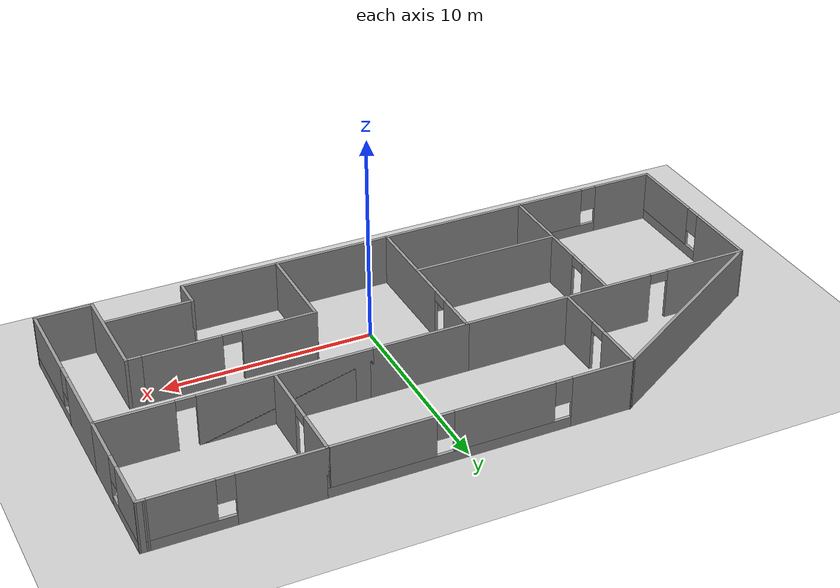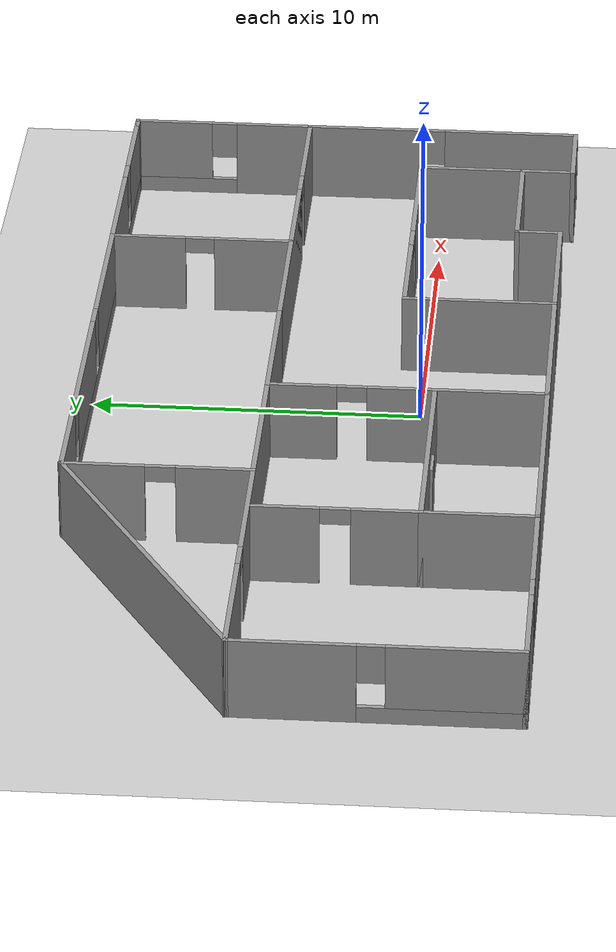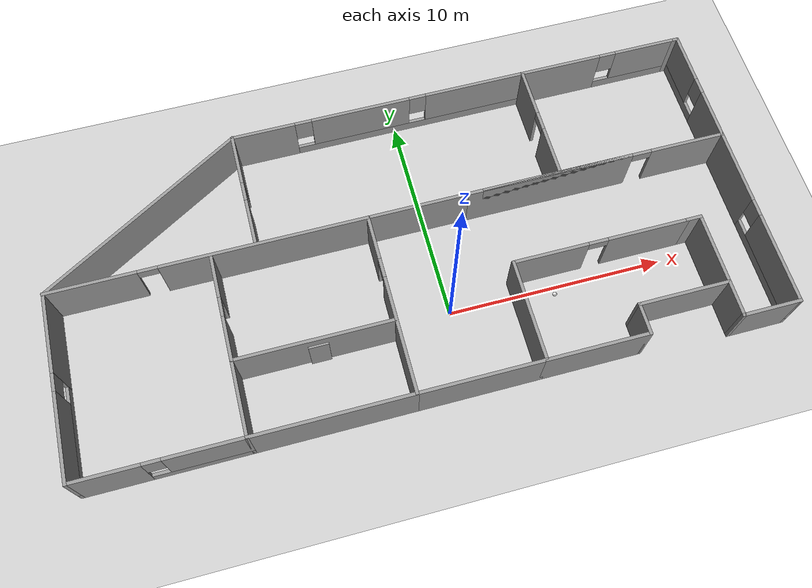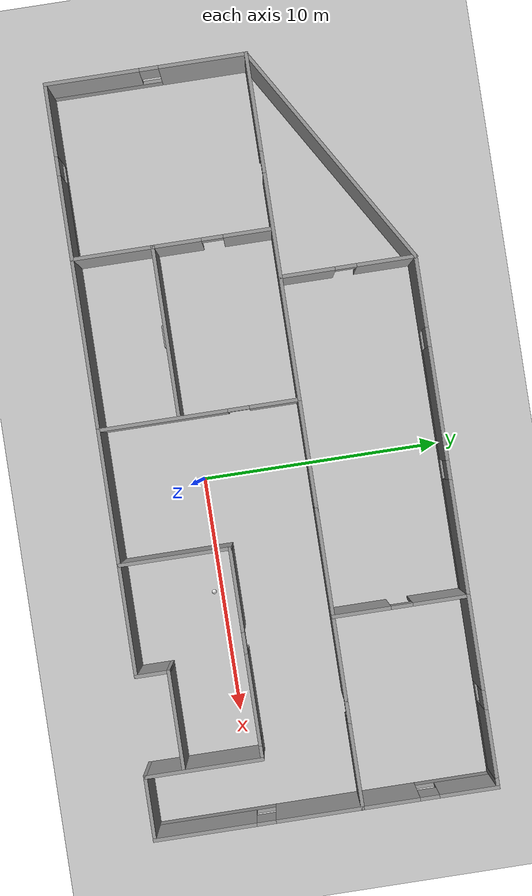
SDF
<sdf version="1.6">
 <world name="default">
  <model name="ground_plane">
   <static>1</static>
   <link name="link">
    <collision name="collision">
     <geometry><plane><normal>0 0 1</normal><size>100 100</size></plane></geometry>
     <surface>
      <contact><collide_bitmask>65535</collide_bitmask></contact>
      <friction><ode><mu>100</mu><mu2>50</mu2></ode></friction>
     </surface>
    </collision>
    <visual name="visual">
     <cast_shadows>0</cast_shadows>
     <geometry><plane><normal>0 0 1</normal><size>100 100</size></plane></geometry>
     <material>
      <script><uri>file://media/materials/scripts/gazebo.material</uri><name>Gazebo/Grey</name></script>
     </material>
    </visual>
   </link>
  </model>
  <light name="sun" type="directional">
   <pose>0 0 10 0 -0 0</pose>
   <diffuse>0.8 0.8 0.8 1</diffuse>
   <specular>0.2 0.2 0.2 1</specular>
   <attenuation>
    <range>1000</range>
    <constant>0.9</constant>
    <linear>0.01</linear>
    <quadratic>0.001</quadratic>
   </attenuation>
   <direction>-0.5 0.1 -0.9</direction>
  </light>
  <gravity>0 0 -9.8</gravity>
  <magnetic_field>6e-06 2.3e-05 -4.2e-05</magnetic_field>
  <atmosphere type="adiabatic"/>
  <physics name="default_physics" default="0" type="ode">
   <max_step_size>0.001</max_step_size>
   <real_time_factor>1</real_time_factor>
   <real_time_update_rate>1000</real_time_update_rate>
  </physics>
  <scene><ambient>0.4 0.4 0.4 1</ambient><background>0.7 0.7 0.7 1</background><shadows>1</shadows></scene>
  <spherical_coordinates>
   <surface_model>EARTH_WGS84</surface_model>
   <latitude_deg>0</latitude_deg>
   <longitude_deg>0</longitude_deg>
   <elevation>0</elevation>
   <heading_deg>0</heading_deg>
  </spherical_coordinates>
  <model name="my_building">
   <pose>-1.38923 2.96332 0 0 -0 0</pose>
   <link name="Door_2">
    <collision name="Door_2_Collision">
     <geometry><box><size>0.9 0.17 2</size></box></geometry>
     <pose>0 0 1 0 -0 0</pose>
    </collision>
    <visual name="Door_2_Visual">
     <pose>0 0 1 0 -0 0</pose>
     <geometry><box><size>0.9 0.17 2</size></box></geometry>
     <material>
      <script><uri>file://media/materials/scripts/gazebo.material</uri><name>Gazebo/Grey</name></script>
     </material>
    </visual>
    <pose>-4.71272 -3.5987 0 0 -0 0</pose>
   </link>
   <link name="Wall_10">
    <collision name="Wall_10_Collision">
     <geometry><box><size>7.25 0.15 2.5</size></box></geometry>
     <pose>0 0 1.25 0 -0 0</pose>
    </collision>
    <visual name="Wall_10_Visual">
     <pose>0 0 1.25 0 -0 0</pose>
     <geometry><box><size>7.25 0.15 2.5</size></box></geometry>
     <material>
      <script><uri>file://media/materials/scripts/gazebo.material</uri><name>Gazebo/Grey</name></script>
      <ambient>1 1 1 1</ambient>
     </material>
     <meta><layer>0</layer></meta>
    </visual>
    <pose>-4.81027 -6.86697 0 0 -0 3.14159</pose>
   </link>
   <link name="Wall_11">
    <collision name="Wall_11_Collision">
     <geometry><box><size>3.5 0.15 2.5</size></box></geometry>
     <pose>0 0 1.25 0 -0 0</pose>
    </collision>
    <visual name="Wall_11_Visual">
     <pose>0 0 1.25 0 -0 0</pose>
     <geometry><box><size>3.5 0.15 2.5</size></box></geometry>
     <material>
      <script><uri>file://media/materials/scripts/gazebo.material</uri><name>Gazebo/Grey</name></script>
      <ambient>1 1 1 1</ambient>
     </material>
     <meta><layer>0</layer></meta>
    </visual>
    <pose>-8.36027 -5.19197 0 0 -0 1.5708</pose>
   </link>
   <link name="Wall_12">
    <collision name="Wall_12_Collision">
     <geometry><box><size>7.25 0.15 2.5</size></box></geometry>
     <pose>0 0 1.25 0 -0 0</pose>
    </collision>
    <visual name="Wall_12_Visual">
     <pose>0 0 1.25 0 -0 0</pose>
     <geometry><box><size>7.25 0.15 2.5</size></box></geometry>
     <material>
      <script><uri>file://media/materials/scripts/gazebo.material</uri><name>Gazebo/Grey</name></script>
      <ambient>1 1 1 1</ambient>
     </material>
     <meta><layer>0</layer></meta>
    </visual>
    <pose>-4.81027 -3.51697 0 0 -0 0</pose>
   </link>
   <link name="Wall_14">
    <pose>-8.46172 1.48303 0 0 -0 3.14159</pose>
    <visual name="Wall_14_Visual_0">
     <pose>-2.516 0 1.25 0 -0 0</pose>
     <geometry><box><size>9.468 0.15 2.5</size></box></geometry>
     <material>
      <script><uri>file://media/materials/scripts/gazebo.material</uri><name>Gazebo/Grey</name></script>
      <ambient>1 1 1 1</ambient>
     </material>
     <meta><layer>0</layer></meta>
    </visual>
    <collision name="Wall_14_Collision_0">
     <geometry><box><size>9.468 0.15 2.5</size></box></geometry>
     <pose>-2.516 0 1.25 0 -0 0</pose>
    </collision>
    <visual name="Wall_14_Visual_1">
     <pose>5.184 0 1.25 0 -0 0</pose>
     <geometry><box><size>4.132 0.15 2.5</size></box></geometry>
     <material>
      <script><uri>file://media/materials/scripts/gazebo.material</uri><name>Gazebo/Grey</name></script>
      <ambient>1 1 1 1</ambient>
     </material>
     <meta><layer>0</layer></meta>
    </visual>
    <collision name="Wall_14_Collision_1">
     <geometry><box><size>4.132 0.15 2.5</size></box></geometry>
     <pose>5.184 0 1.25 0 -0 0</pose>
    </collision>
    <visual name="Wall_14_Visual_2">
     <pose>2.668 0 2.25 0 -0 0</pose>
     <geometry><box><size>0.9 0.15 0.5</size></box></geometry>
     <material>
      <script><uri>file://media/materials/scripts/gazebo.material</uri><name>Gazebo/Grey</name></script>
      <ambient>1 1 1 1</ambient>
     </material>
     <meta><layer>0</layer></meta>
    </visual>
    <collision name="Wall_14_Collision_2">
     <geometry><box><size>0.9 0.15 0.5</size></box></geometry>
     <pose>2.668 0 2.25 0 -0 0</pose>
    </collision>
   </link>
   <link name="Wall_15">
    <pose>-15.6367 -2.69197 0 0 0 -1.5708</pose>
    <visual name="Wall_15_Visual_0">
     <pose>-2.38913 0 1.25 0 -0 0</pose>
     <geometry><box><size>3.72173 0.15 2.5</size></box></geometry>
     <material>
      <script><uri>file://media/materials/scripts/gazebo.material</uri><name>Gazebo/Grey</name></script>
      <ambient>1 1 1 1</ambient>
     </material>
     <meta><layer>0</layer></meta>
    </visual>
    <collision name="Wall_15_Collision_0">
     <geometry><box><size>3.72173 0.15 2.5</size></box></geometry>
     <pose>-2.38913 0 1.25 0 -0 0</pose>
    </collision>
    <visual name="Wall_15_Visual_1">
     <pose>1.86087 0 0.25 0 -0 0</pose>
     <geometry><box><size>4.77827 0.15 0.5</size></box></geometry>
     <material>
      <script><uri>file://media/materials/scripts/gazebo.material</uri><name>Gazebo/Grey</name></script>
      <ambient>1 1 1 1</ambient>
     </material>
     <meta><layer>0</layer></meta>
    </visual>
    <collision name="Wall_15_Collision_1">
     <geometry><box><size>4.77827 0.15 0.5</size></box></geometry>
     <pose>1.86087 0 0.25 0 -0 0</pose>
    </collision>
    <visual name="Wall_15_Visual_2">
     <pose>2.26087 0 1.5 0 -0 0</pose>
     <geometry><box><size>3.97827 0.15 2</size></box></geometry>
     <material>
      <script><uri>file://media/materials/scripts/gazebo.material</uri><name>Gazebo/Grey</name></script>
      <ambient>1 1 1 1</ambient>
     </material>
     <meta><layer>0</layer></meta>
    </visual>
    <collision name="Wall_15_Collision_2">
     <geometry><box><size>3.97827 0.15 2</size></box></geometry>
     <pose>2.26087 0 1.5 0 -0 0</pose>
    </collision>
    <visual name="Wall_15_Visual_3">
     <pose>-0.128267 0 1.9 0 -0 0</pose>
     <geometry><box><size>0.8 0.15 1.2</size></box></geometry>
     <material>
      <script><uri>file://media/materials/scripts/gazebo.material</uri><name>Gazebo/Grey</name></script>
      <ambient>1 1 1 1</ambient>
     </material>
     <meta><layer>0</layer></meta>
    </visual>
    <collision name="Wall_15_Collision_3">
     <geometry><box><size>0.8 0.15 1.2</size></box></geometry>
     <pose>-0.128267 0 1.9 0 -0 0</pose>
    </collision>
   </link>
   <link name="Wall_16">
    <pose>-11.9985 -6.86697 0 0 -0 0</pose>
    <visual name="Wall_16_Visual_0">
     <pose>-2.17422 0 1.25 0 -0 0</pose>
     <geometry><box><size>3.078 0.15 2.5</size></box></geometry>
     <material>
      <script><uri>file://media/materials/scripts/gazebo.material</uri><name>Gazebo/Grey</name></script>
      <ambient>1 1 1 1</ambient>
     </material>
     <meta><layer>0</layer></meta>
    </visual>
    <collision name="Wall_16_Collision_0">
     <geometry><box><size>3.078 0.15 2.5</size></box></geometry>
     <pose>-2.17422 0 1.25 0 -0 0</pose>
    </collision>
    <visual name="Wall_16_Visual_1">
     <pose>1.539 0 0.25 0 -0 0</pose>
     <geometry><box><size>4.34845 0.15 0.5</size></box></geometry>
     <material>
      <script><uri>file://media/materials/scripts/gazebo.material</uri><name>Gazebo/Grey</name></script>
      <ambient>1 1 1 1</ambient>
     </material>
     <meta><layer>0</layer></meta>
    </visual>
    <collision name="Wall_16_Collision_1">
     <geometry><box><size>4.34845 0.15 0.5</size></box></geometry>
     <pose>1.539 0 0.25 0 -0 0</pose>
    </collision>
    <visual name="Wall_16_Visual_2">
     <pose>1.939 0 1.5 0 -0 0</pose>
     <geometry><box><size>3.54845 0.15 2</size></box></geometry>
     <material>
      <script><uri>file://media/materials/scripts/gazebo.material</uri><name>Gazebo/Grey</name></script>
      <ambient>1 1 1 1</ambient>
     </material>
     <meta><layer>0</layer></meta>
    </visual>
    <collision name="Wall_16_Collision_2">
     <geometry><box><size>3.54845 0.15 2</size></box></geometry>
     <pose>1.939 0 1.5 0 -0 0</pose>
    </collision>
    <visual name="Wall_16_Visual_3">
     <pose>-0.235223 0 1.9 0 -0 0</pose>
     <geometry><box><size>0.8 0.15 1.2</size></box></geometry>
     <material>
      <script><uri>file://media/materials/scripts/gazebo.material</uri><name>Gazebo/Grey</name></script>
      <ambient>1 1 1 1</ambient>
     </material>
     <meta><layer>0</layer></meta>
    </visual>
    <collision name="Wall_16_Collision_3">
     <geometry><box><size>0.8 0.15 1.2</size></box></geometry>
     <pose>-0.235223 0 1.9 0 -0 0</pose>
    </collision>
   </link>
   <link name="Wall_18">
    <collision name="Wall_18_Collision">
     <geometry><box><size>5.75 0.15 2.5</size></box></geometry>
     <pose>0 0 1.25 0 -0 0</pose>
    </collision>
    <visual name="Wall_18_Visual">
     <pose>0 0 1.25 0 -0 0</pose>
     <geometry><box><size>5.75 0.15 2.5</size></box></geometry>
     <material>
      <script><uri>file://media/materials/scripts/gazebo.material</uri><name>Gazebo/Grey</name></script>
      <ambient>1 1 1 1</ambient>
     </material>
     <meta><layer>0</layer></meta>
    </visual>
    <pose>1.53973 -6.86697 0 0 -0 0</pose>
   </link>
   <link name="Wall_19">
    <collision name="Wall_19_Collision">
     <geometry><box><size>4.75 0.15 2.5</size></box></geometry>
     <pose>0 0 1.25 0 -0 0</pose>
    </collision>
    <visual name="Wall_19_Visual">
     <pose>0 0 1.25 0 -0 0</pose>
     <geometry><box><size>4.75 0.15 2.5</size></box></geometry>
     <material>
      <script><uri>file://media/materials/scripts/gazebo.material</uri><name>Gazebo/Grey</name></script>
      <ambient>1 1 1 1</ambient>
     </material>
     <meta><layer>0</layer></meta>
    </visual>
    <pose>4.33973 -4.56697 0 0 -0 1.5708</pose>
   </link>
   <link name="Wall_20">
    <pose>8.38973 -2.26697 0 0 -0 0</pose>
    <visual name="Wall_20_Visual_0">
     <pose>-2.35272 0 1.25 0 -0 0</pose>
     <geometry><box><size>3.54455 0.15 2.5</size></box></geometry>
     <material>
      <script><uri>file://media/materials/scripts/gazebo.material</uri><name>Gazebo/Grey</name></script>
      <ambient>1 1 1 1</ambient>
     </material>
     <meta><layer>0</layer></meta>
    </visual>
    <collision name="Wall_20_Collision_0">
     <geometry><box><size>3.54455 0.15 2.5</size></box></geometry>
     <pose>-2.35272 0 1.25 0 -0 0</pose>
    </collision>
    <visual name="Wall_20_Visual_1">
     <pose>2.22228 0 1.25 0 -0 0</pose>
     <geometry><box><size>3.80545 0.15 2.5</size></box></geometry>
     <material>
      <script><uri>file://media/materials/scripts/gazebo.material</uri><name>Gazebo/Grey</name></script>
      <ambient>1 1 1 1</ambient>
     </material>
     <meta><layer>0</layer></meta>
    </visual>
    <collision name="Wall_20_Collision_1">
     <geometry><box><size>3.80545 0.15 2.5</size></box></geometry>
     <pose>2.22228 0 1.25 0 -0 0</pose>
    </collision>
    <visual name="Wall_20_Visual_2">
     <pose>-0.130447 0 2.25 0 -0 0</pose>
     <geometry><box><size>0.9 0.15 0.5</size></box></geometry>
     <material>
      <script><uri>file://media/materials/scripts/gazebo.material</uri><name>Gazebo/Grey</name></script>
      <ambient>1 1 1 1</ambient>
     </material>
     <meta><layer>0</layer></meta>
    </visual>
    <collision name="Wall_20_Collision_2">
     <geometry><box><size>0.9 0.15 0.5</size></box></geometry>
     <pose>-0.130447 0 2.25 0 -0 0</pose>
    </collision>
   </link>
   <link name="Wall_24">
    <pose>9.48828 1.48303 0 0 -0 0</pose>
    <visual name="Wall_24_Visual_0">
     <pose>-2.2395 0 1.25 0 -0 0</pose>
     <geometry><box><size>8.021 0.15 2.5</size></box></geometry>
     <material>
      <script><uri>file://media/materials/scripts/gazebo.material</uri><name>Gazebo/Grey</name></script>
      <ambient>1 1 1 1</ambient>
     </material>
     <meta><layer>0</layer></meta>
    </visual>
    <collision name="Wall_24_Collision_0">
     <geometry><box><size>8.021 0.15 2.5</size></box></geometry>
     <pose>-2.2395 0 1.25 0 -0 0</pose>
    </collision>
    <visual name="Wall_24_Visual_1">
     <pose>-1.8155 0 1.25 0 -0 0</pose>
     <geometry><box><size>7.173 0.15 2.5</size></box></geometry>
     <material>
      <script><uri>file://media/materials/scripts/gazebo.material</uri><name>Gazebo/Grey</name></script>
      <ambient>1 1 1 1</ambient>
     </material>
     <meta><layer>0</layer></meta>
    </visual>
    <collision name="Wall_24_Collision_1">
     <geometry><box><size>7.173 0.15 2.5</size></box></geometry>
     <pose>-1.8155 0 1.25 0 -0 0</pose>
    </collision>
    <visual name="Wall_24_Visual_2">
     <pose>4.4605 0 1.25 0 -0 0</pose>
     <geometry><box><size>3.579 0.15 2.5</size></box></geometry>
     <material>
      <script><uri>file://media/materials/scripts/gazebo.material</uri><name>Gazebo/Grey</name></script>
      <ambient>1 1 1 1</ambient>
     </material>
     <meta><layer>0</layer></meta>
    </visual>
    <collision name="Wall_24_Collision_2">
     <geometry><box><size>3.579 0.15 2.5</size></box></geometry>
     <pose>4.4605 0 1.25 0 -0 0</pose>
    </collision>
    <visual name="Wall_24_Visual_3">
     <pose>2.221 0 2.25 0 -0 0</pose>
     <geometry><box><size>0.9 0.15 0.5</size></box></geometry>
     <material>
      <script><uri>file://media/materials/scripts/gazebo.material</uri><name>Gazebo/Grey</name></script>
      <ambient>1 1 1 1</ambient>
     </material>
     <meta><layer>0</layer></meta>
    </visual>
    <collision name="Wall_24_Collision_3">
     <geometry><box><size>0.9 0.15 0.5</size></box></geometry>
     <pose>2.221 0 2.25 0 -0 0</pose>
    </collision>
    <visual name="Wall_24_Visual_4">
     <pose>2.221 0 2.25 0 -0 0</pose>
     <geometry><box><size>0.9 0.15 0.5</size></box></geometry>
     <material>
      <script><uri>file://media/materials/scripts/gazebo.material</uri><name>Gazebo/Grey</name></script>
      <ambient>1 1 1 1</ambient>
     </material>
     <meta><layer>0</layer></meta>
    </visual>
    <collision name="Wall_24_Collision_4">
     <geometry><box><size>0.9 0.15 0.5</size></box></geometry>
     <pose>2.221 0 2.25 0 -0 0</pose>
    </collision>
   </link>
   <link name="Wall_25">
    <pose>15.6633 -2.81697 0 0 0 -1.5708</pose>
    <visual name="Wall_25_Visual_0">
     <pose>-2.54863 0 1.25 0 -0 0</pose>
     <geometry><box><size>3.65273 0.15 2.5</size></box></geometry>
     <material>
      <script><uri>file://media/materials/scripts/gazebo.material</uri><name>Gazebo/Grey</name></script>
      <ambient>1 1 1 1</ambient>
     </material>
     <meta><layer>0</layer></meta>
    </visual>
    <collision name="Wall_25_Collision_0">
     <geometry><box><size>3.65273 0.15 2.5</size></box></geometry>
     <pose>-2.54863 0 1.25 0 -0 0</pose>
    </collision>
    <visual name="Wall_25_Visual_1">
     <pose>1.82637 0 0.25 0 -0 0</pose>
     <geometry><box><size>5.09727 0.15 0.5</size></box></geometry>
     <material>
      <script><uri>file://media/materials/scripts/gazebo.material</uri><name>Gazebo/Grey</name></script>
      <ambient>1 1 1 1</ambient>
     </material>
     <meta><layer>0</layer></meta>
    </visual>
    <collision name="Wall_25_Collision_1">
     <geometry><box><size>5.09727 0.15 0.5</size></box></geometry>
     <pose>1.82637 0 0.25 0 -0 0</pose>
    </collision>
    <visual name="Wall_25_Visual_2">
     <pose>2.22637 0 1.5 0 -0 0</pose>
     <geometry><box><size>4.29727 0.15 2</size></box></geometry>
     <material>
      <script><uri>file://media/materials/scripts/gazebo.material</uri><name>Gazebo/Grey</name></script>
      <ambient>1 1 1 1</ambient>
     </material>
     <meta><layer>0</layer></meta>
    </visual>
    <collision name="Wall_25_Collision_2">
     <geometry><box><size>4.29727 0.15 2</size></box></geometry>
     <pose>2.22637 0 1.5 0 -0 0</pose>
    </collision>
    <visual name="Wall_25_Visual_3">
     <pose>-0.322267 0 1.9 0 -0 0</pose>
     <geometry><box><size>0.8 0.15 1.2</size></box></geometry>
     <material>
      <script><uri>file://media/materials/scripts/gazebo.material</uri><name>Gazebo/Grey</name></script>
      <ambient>1 1 1 1</ambient>
     </material>
     <meta><layer>0</layer></meta>
    </visual>
    <collision name="Wall_25_Collision_3">
     <geometry><box><size>0.8 0.15 1.2</size></box></geometry>
     <pose>-0.322267 0 1.9 0 -0 0</pose>
    </collision>
   </link>
   <link name="Wall_26">
    <collision name="Wall_26_Collision">
     <geometry><box><size>2.75 0.15 2.5</size></box></geometry>
     <pose>0 0 1.25 0 -0 0</pose>
    </collision>
    <visual name="Wall_26_Visual">
     <pose>0 0 1.25 0 -0 0</pose>
     <geometry><box><size>2.75 0.15 2.5</size></box></geometry>
     <material>
      <script><uri>file://media/materials/scripts/gazebo.material</uri><name>Gazebo/Grey</name></script>
      <ambient>1 1 1 1</ambient>
     </material>
     <meta><layer>0</layer></meta>
    </visual>
    <pose>14.3633 -7.11697 0 0 -0 3.14159</pose>
   </link>
   <link name="Wall_27">
    <collision name="Wall_27_Collision">
     <geometry><box><size>5 0.15 2.5</size></box></geometry>
     <pose>0 0 1.25 0 -0 0</pose>
    </collision>
    <visual name="Wall_27_Visual">
     <pose>0 0 1.25 0 -0 0</pose>
     <geometry><box><size>5 0.15 2.5</size></box></geometry>
     <material>
      <script><uri>file://media/materials/scripts/gazebo.material</uri><name>Gazebo/Grey</name></script>
      <ambient>1 1 1 1</ambient>
     </material>
     <meta><layer>0</layer></meta>
    </visual>
    <pose>13.0633 -4.69197 0 0 -0 1.5708</pose>
   </link>
   <link name="Wall_28">
    <collision name="Wall_28_Collision">
     <geometry><box><size>0.77355 0.15 2.5</size></box></geometry>
     <pose>0 0 1.25 0 -0 0</pose>
    </collision>
    <visual name="Wall_28_Visual">
     <pose>0 0 1.25 0 -0 0</pose>
     <geometry><box><size>0.77355 0.15 2.5</size></box></geometry>
     <material>
      <script><uri>file://media/materials/scripts/gazebo.material</uri><name>Gazebo/Grey</name></script>
      <ambient>1 1 1 1</ambient>
     </material>
     <meta><layer>0</layer></meta>
    </visual>
    <pose>12.7515 -2.26697 0 0 -0 3.14159</pose>
   </link>
   <link name="Wall_30">
    <pose>-6.35081 4.289 0 0 -0 1.5708</pose>
    <visual name="Wall_30_Visual_0">
     <pose>-1.70785 0 1.25 0 -0 0</pose>
     <geometry><box><size>2.3343 0.15 2.5</size></box></geometry>
     <material>
      <script><uri>file://media/materials/scripts/gazebo.material</uri><name>Gazebo/Grey</name></script>
      <ambient>1 1 1 1</ambient>
     </material>
     <meta><layer>0</layer></meta>
    </visual>
    <collision name="Wall_30_Collision_0">
     <geometry><box><size>2.3343 0.15 2.5</size></box></geometry>
     <pose>-1.70785 0 1.25 0 -0 0</pose>
    </collision>
    <visual name="Wall_30_Visual_1">
     <pose>1.61715 0 1.25 0 -0 0</pose>
     <geometry><box><size>2.5157 0.15 2.5</size></box></geometry>
     <material>
      <script><uri>file://media/materials/scripts/gazebo.material</uri><name>Gazebo/Grey</name></script>
      <ambient>1 1 1 1</ambient>
     </material>
     <meta><layer>0</layer></meta>
    </visual>
    <collision name="Wall_30_Collision_1">
     <geometry><box><size>2.5157 0.15 2.5</size></box></geometry>
     <pose>1.61715 0 1.25 0 -0 0</pose>
    </collision>
    <visual name="Wall_30_Visual_2">
     <pose>-0.090696 0 2.25 0 -0 0</pose>
     <geometry><box><size>0.9 0.15 0.5</size></box></geometry>
     <material>
      <script><uri>file://media/materials/scripts/gazebo.material</uri><name>Gazebo/Grey</name></script>
      <ambient>1 1 1 1</ambient>
     </material>
     <meta><layer>0</layer></meta>
    </visual>
    <collision name="Wall_30_Collision_2">
     <geometry><box><size>0.9 0.15 0.5</size></box></geometry>
     <pose>-0.090696 0 2.25 0 -0 0</pose>
    </collision>
   </link>
   <link name="Wall_31">
    <pose>0.699185 7.089 0 0 -0 0</pose>
    <visual name="Wall_31_Visual_0">
     <pose>-5.60595 0 1.25 0 -0 0</pose>
     <geometry><box><size>3.0381 0.15 2.5</size></box></geometry>
     <material>
      <script><uri>file://media/materials/scripts/gazebo.material</uri><name>Gazebo/Grey</name></script>
      <ambient>1 1 1 1</ambient>
     </material>
     <meta><layer>0</layer></meta>
    </visual>
    <collision name="Wall_31_Collision_0">
     <geometry><box><size>3.0381 0.15 2.5</size></box></geometry>
     <pose>-5.60595 0 1.25 0 -0 0</pose>
    </collision>
    <visual name="Wall_31_Visual_1">
     <pose>1.51905 0 0.25 0 -0 0</pose>
     <geometry><box><size>11.2119 0.15 0.5</size></box></geometry>
     <material>
      <script><uri>file://media/materials/scripts/gazebo.material</uri><name>Gazebo/Grey</name></script>
      <ambient>1 1 1 1</ambient>
     </material>
     <meta><layer>0</layer></meta>
    </visual>
    <collision name="Wall_31_Collision_1">
     <geometry><box><size>11.2119 0.15 0.5</size></box></geometry>
     <pose>1.51905 0 0.25 0 -0 0</pose>
    </collision>
    <visual name="Wall_31_Visual_2">
     <pose>-0.926904 0 1.5 0 -0 0</pose>
     <geometry><box><size>4.72 0.15 2</size></box></geometry>
     <material>
      <script><uri>file://media/materials/scripts/gazebo.material</uri><name>Gazebo/Grey</name></script>
      <ambient>1 1 1 1</ambient>
     </material>
     <meta><layer>0</layer></meta>
    </visual>
    <collision name="Wall_31_Collision_2">
     <geometry><box><size>4.72 0.15 2</size></box></geometry>
     <pose>-0.926904 0 1.5 0 -0 0</pose>
    </collision>
    <visual name="Wall_31_Visual_3">
     <pose>4.67905 0 1.5 0 -0 0</pose>
     <geometry><box><size>4.8919 0.15 2</size></box></geometry>
     <material>
      <script><uri>file://media/materials/scripts/gazebo.material</uri><name>Gazebo/Grey</name></script>
      <ambient>1 1 1 1</ambient>
     </material>
     <meta><layer>0</layer></meta>
    </visual>
    <collision name="Wall_31_Collision_3">
     <geometry><box><size>4.8919 0.15 2</size></box></geometry>
     <pose>4.67905 0 1.5 0 -0 0</pose>
    </collision>
    <visual name="Wall_31_Visual_4">
     <pose>-3.6869 0 1.9 0 -0 0</pose>
     <geometry><box><size>0.8 0.15 1.2</size></box></geometry>
     <material>
      <script><uri>file://media/materials/scripts/gazebo.material</uri><name>Gazebo/Grey</name></script>
      <ambient>1 1 1 1</ambient>
     </material>
     <meta><layer>0</layer></meta>
    </visual>
    <collision name="Wall_31_Collision_4">
     <geometry><box><size>0.8 0.15 1.2</size></box></geometry>
     <pose>-3.6869 0 1.9 0 -0 0</pose>
    </collision>
    <visual name="Wall_31_Visual_5">
     <pose>1.8331 0 1.9 0 -0 0</pose>
     <geometry><box><size>0.8 0.15 1.2</size></box></geometry>
     <material>
      <script><uri>file://media/materials/scripts/gazebo.material</uri><name>Gazebo/Grey</name></script>
      <ambient>1 1 1 1</ambient>
     </material>
     <meta><layer>0</layer></meta>
    </visual>
    <collision name="Wall_31_Collision_5">
     <geometry><box><size>0.8 0.15 1.2</size></box></geometry>
     <pose>1.8331 0 1.9 0 -0 0</pose>
    </collision>
   </link>
   <link name="Wall_32">
    <pose>7.74919 4.289 0 0 0 -1.5708</pose>
    <visual name="Wall_32_Visual_0">
     <pose>-1.68615 0 1.25 0 -0 0</pose>
     <geometry><box><size>2.3777 0.15 2.5</size></box></geometry>
     <material>
      <script><uri>file://media/materials/scripts/gazebo.material</uri><name>Gazebo/Grey</name></script>
      <ambient>1 1 1 1</ambient>
     </material>
     <meta><layer>0</layer></meta>
    </visual>
    <collision name="Wall_32_Collision_0">
     <geometry><box><size>2.3777 0.15 2.5</size></box></geometry>
     <pose>-1.68615 0 1.25 0 -0 0</pose>
    </collision>
    <visual name="Wall_32_Visual_1">
     <pose>1.63885 0 1.25 0 -0 0</pose>
     <geometry><box><size>2.4723 0.15 2.5</size></box></geometry>
     <material>
      <script><uri>file://media/materials/scripts/gazebo.material</uri><name>Gazebo/Grey</name></script>
      <ambient>1 1 1 1</ambient>
     </material>
     <meta><layer>0</layer></meta>
    </visual>
    <collision name="Wall_32_Collision_1">
     <geometry><box><size>2.4723 0.15 2.5</size></box></geometry>
     <pose>1.63885 0 1.25 0 -0 0</pose>
    </collision>
    <visual name="Wall_32_Visual_2">
     <pose>-0.047304 0 2.25 0 -0 0</pose>
     <geometry><box><size>0.9 0.15 0.5</size></box></geometry>
     <material>
      <script><uri>file://media/materials/scripts/gazebo.material</uri><name>Gazebo/Grey</name></script>
      <ambient>1 1 1 1</ambient>
     </material>
     <meta><layer>0</layer></meta>
    </visual>
    <collision name="Wall_32_Collision_2">
     <geometry><box><size>0.9 0.15 0.5</size></box></geometry>
     <pose>-0.047304 0 2.25 0 -0 0</pose>
    </collision>
   </link>
   <link name="Wall_34">
    <pose>11.5492 7.089 0 0 -0 0</pose>
    <visual name="Wall_34_Visual_0">
     <pose>-1.88495 0 1.25 0 -0 0</pose>
     <geometry><box><size>3.98009 0.15 2.5</size></box></geometry>
     <material>
      <script><uri>file://media/materials/scripts/gazebo.material</uri><name>Gazebo/Grey</name></script>
      <ambient>1 1 1 1</ambient>
     </material>
     <meta><layer>0</layer></meta>
    </visual>
    <collision name="Wall_34_Collision_0">
     <geometry><box><size>3.98009 0.15 2.5</size></box></geometry>
     <pose>-1.88495 0 1.25 0 -0 0</pose>
    </collision>
    <visual name="Wall_34_Visual_1">
     <pose>1.99005 0 0.25 0 -0 0</pose>
     <geometry><box><size>3.76991 0.15 0.5</size></box></geometry>
     <material>
      <script><uri>file://media/materials/scripts/gazebo.material</uri><name>Gazebo/Grey</name></script>
      <ambient>1 1 1 1</ambient>
     </material>
     <meta><layer>0</layer></meta>
    </visual>
    <collision name="Wall_34_Collision_1">
     <geometry><box><size>3.76991 0.15 0.5</size></box></geometry>
     <pose>1.99005 0 0.25 0 -0 0</pose>
    </collision>
    <visual name="Wall_34_Visual_2">
     <pose>2.39005 0 1.5 0 -0 0</pose>
     <geometry><box><size>2.9699 0.15 2</size></box></geometry>
     <material>
      <script><uri>file://media/materials/scripts/gazebo.material</uri><name>Gazebo/Grey</name></script>
      <ambient>1 1 1 1</ambient>
     </material>
     <meta><layer>0</layer></meta>
    </visual>
    <collision name="Wall_34_Collision_2">
     <geometry><box><size>2.9699 0.15 2</size></box></geometry>
     <pose>2.39005 0 1.5 0 -0 0</pose>
    </collision>
    <visual name="Wall_34_Visual_3">
     <pose>0.505095 0 1.9 0 -0 0</pose>
     <geometry><box><size>0.8 0.15 1.2</size></box></geometry>
     <material>
      <script><uri>file://media/materials/scripts/gazebo.material</uri><name>Gazebo/Grey</name></script>
      <ambient>1 1 1 1</ambient>
     </material>
     <meta><layer>0</layer></meta>
    </visual>
    <collision name="Wall_34_Collision_3">
     <geometry><box><size>0.8 0.15 1.2</size></box></geometry>
     <pose>0.505095 0 1.9 0 -0 0</pose>
    </collision>
   </link>
   <link name="Wall_4">
    <pose>-1.26027 -2.69197 0 0 -0 1.5708</pose>
    <visual name="Wall_4_Visual_0">
     <pose>-1.52687 0 1.25 0 -0 0</pose>
     <geometry><box><size>5.44627 0.15 2.5</size></box></geometry>
     <material>
      <script><uri>file://media/materials/scripts/gazebo.material</uri><name>Gazebo/Grey</name></script>
      <ambient>1 1 1 1</ambient>
     </material>
     <meta><layer>0</layer></meta>
    </visual>
    <collision name="Wall_4_Collision_0">
     <geometry><box><size>5.44627 0.15 2.5</size></box></geometry>
     <pose>-1.52687 0 1.25 0 -0 0</pose>
    </collision>
    <visual name="Wall_4_Visual_1">
     <pose>3.17313 0 1.25 0 -0 0</pose>
     <geometry><box><size>2.15373 0.15 2.5</size></box></geometry>
     <material>
      <script><uri>file://media/materials/scripts/gazebo.material</uri><name>Gazebo/Grey</name></script>
      <ambient>1 1 1 1</ambient>
     </material>
     <meta><layer>0</layer></meta>
    </visual>
    <collision name="Wall_4_Collision_1">
     <geometry><box><size>2.15373 0.15 2.5</size></box></geometry>
     <pose>3.17313 0 1.25 0 -0 0</pose>
    </collision>
    <visual name="Wall_4_Visual_2">
     <pose>1.64627 0 2.25 0 -0 0</pose>
     <geometry><box><size>0.9 0.15 0.5</size></box></geometry>
     <material>
      <script><uri>file://media/materials/scripts/gazebo.material</uri><name>Gazebo/Grey</name></script>
      <ambient>1 1 1 1</ambient>
     </material>
     <meta><layer>0</layer></meta>
    </visual>
    <collision name="Wall_4_Collision_2">
     <geometry><box><size>0.9 0.15 0.5</size></box></geometry>
     <pose>1.64627 0 2.25 0 -0 0</pose>
    </collision>
   </link>
   <link name="Wall_40">
    <pose>15.6633 4.28303 0 0 -0 1.5708</pose>
    <visual name="Wall_40_Visual_0">
     <pose>-1.64537 0 1.25 0 -0 0</pose>
     <geometry><box><size>2.45927 0.15 2.5</size></box></geometry>
     <material>
      <script><uri>file://media/materials/scripts/gazebo.material</uri><name>Gazebo/Grey</name></script>
      <ambient>1 1 1 1</ambient>
     </material>
     <meta><layer>0</layer></meta>
    </visual>
    <collision name="Wall_40_Collision_0">
     <geometry><box><size>2.45927 0.15 2.5</size></box></geometry>
     <pose>-1.64537 0 1.25 0 -0 0</pose>
    </collision>
    <visual name="Wall_40_Visual_1">
     <pose>1.22963 0 0.25 0 -0 0</pose>
     <geometry><box><size>3.29073 0.15 0.5</size></box></geometry>
     <material>
      <script><uri>file://media/materials/scripts/gazebo.material</uri><name>Gazebo/Grey</name></script>
      <ambient>1 1 1 1</ambient>
     </material>
     <meta><layer>0</layer></meta>
    </visual>
    <collision name="Wall_40_Collision_1">
     <geometry><box><size>3.29073 0.15 0.5</size></box></geometry>
     <pose>1.22963 0 0.25 0 -0 0</pose>
    </collision>
    <visual name="Wall_40_Visual_2">
     <pose>1.62963 0 1.5 0 -0 0</pose>
     <geometry><box><size>2.49073 0.15 2</size></box></geometry>
     <material>
      <script><uri>file://media/materials/scripts/gazebo.material</uri><name>Gazebo/Grey</name></script>
      <ambient>1 1 1 1</ambient>
     </material>
     <meta><layer>0</layer></meta>
    </visual>
    <collision name="Wall_40_Collision_2">
     <geometry><box><size>2.49073 0.15 2</size></box></geometry>
     <pose>1.62963 0 1.5 0 -0 0</pose>
    </collision>
    <visual name="Wall_40_Visual_3">
     <pose>-0.015733 0 1.9 0 -0 0</pose>
     <geometry><box><size>0.8 0.15 1.2</size></box></geometry>
     <material>
      <script><uri>file://media/materials/scripts/gazebo.material</uri><name>Gazebo/Grey</name></script>
      <ambient>1 1 1 1</ambient>
     </material>
     <meta><layer>0</layer></meta>
    </visual>
    <collision name="Wall_40_Collision_3">
     <geometry><box><size>0.8 0.15 1.2</size></box></geometry>
     <pose>-0.015733 0 1.9 0 -0 0</pose>
    </collision>
   </link>
   <link name="Wall_41">
    <collision name="Wall_41_Collision">
     <geometry><box><size>0.46415 0.15 2.5</size></box></geometry>
     <pose>0 0 1.25 0 -0 0</pose>
    </collision>
    <visual name="Wall_41_Visual">
     <pose>0 0 1.25 0 -0 0</pose>
     <geometry><box><size>0.46415 0.15 2.5</size></box></geometry>
     <material>
      <script><uri>file://media/materials/scripts/gazebo.material</uri><name>Gazebo/Grey</name></script>
      <ambient>1 1 1 1</ambient>
     </material>
     <meta><layer>0</layer></meta>
    </visual>
    <pose>15.5062 7.08602 0 0 -0 3.12261</pose>
   </link>
   <link name="Wall_43">
    <pose>-8.36027 -1.09197 0 0 -0 1.5708</pose>
    <visual name="Wall_43_Visual_0">
     <pose>-1.45187 0 1.25 0 -0 0</pose>
     <geometry><box><size>2.09627 0.15 2.5</size></box></geometry>
     <material>
      <script><uri>file://media/materials/scripts/gazebo.material</uri><name>Gazebo/Grey</name></script>
      <ambient>1 1 1 1</ambient>
     </material>
     <meta><layer>0</layer></meta>
    </visual>
    <collision name="Wall_43_Collision_0">
     <geometry><box><size>2.09627 0.15 2.5</size></box></geometry>
     <pose>-1.45187 0 1.25 0 -0 0</pose>
    </collision>
    <visual name="Wall_43_Visual_1">
     <pose>1.49813 0 1.25 0 -0 0</pose>
     <geometry><box><size>2.00373 0.15 2.5</size></box></geometry>
     <material>
      <script><uri>file://media/materials/scripts/gazebo.material</uri><name>Gazebo/Grey</name></script>
      <ambient>1 1 1 1</ambient>
     </material>
     <meta><layer>0</layer></meta>
    </visual>
    <collision name="Wall_43_Collision_1">
     <geometry><box><size>2.00373 0.15 2.5</size></box></geometry>
     <pose>1.49813 0 1.25 0 -0 0</pose>
    </collision>
    <visual name="Wall_43_Visual_2">
     <pose>0.046267 0 2.25 0 -0 0</pose>
     <geometry><box><size>0.9 0.15 0.5</size></box></geometry>
     <material>
      <script><uri>file://media/materials/scripts/gazebo.material</uri><name>Gazebo/Grey</name></script>
      <ambient>1 1 1 1</ambient>
     </material>
     <meta><layer>0</layer></meta>
    </visual>
    <collision name="Wall_43_Collision_2">
     <geometry><box><size>0.9 0.15 0.5</size></box></geometry>
     <pose>0.046267 0 2.25 0 -0 0</pose>
    </collision>
   </link>
   <link name="Wall_45">
    <collision name="Wall_45_Collision">
     <geometry><box><size>4.75 0.15 2.5</size></box></geometry>
     <pose>0 0 1.25 0 -0 0</pose>
    </collision>
    <visual name="Wall_45_Visual">
     <pose>0 0 1.25 0 -0 0</pose>
     <geometry><box><size>4.75 0.15 2.5</size></box></geometry>
     <material>
      <script><uri>file://media/materials/scripts/gazebo.material</uri><name>Gazebo/Grey</name></script>
      <ambient>1 1 1 1</ambient>
     </material>
     <meta><layer>0</layer></meta>
    </visual>
    <pose>6.63973 -6.86697 0 0 -0 0</pose>
   </link>
   <link name="Wall_46">
    <collision name="Wall_46_Collision">
     <geometry><box><size>1.5 0.15 2.5</size></box></geometry>
     <pose>0 0 1.25 0 -0 0</pose>
    </collision>
    <visual name="Wall_46_Visual">
     <pose>0 0 1.25 0 -0 0</pose>
     <geometry><box><size>1.5 0.15 2.5</size></box></geometry>
     <material>
      <script><uri>file://media/materials/scripts/gazebo.material</uri><name>Gazebo/Grey</name></script>
      <ambient>1 1 1 1</ambient>
     </material>
     <meta><layer>0</layer></meta>
    </visual>
    <pose>8.93973 -6.19197 0 0 -0 1.5708</pose>
   </link>
   <link name="Wall_47">
    <collision name="Wall_47_Collision">
     <geometry><box><size>4.25 0.15 2.5</size></box></geometry>
     <pose>0 0 1.25 0 -0 0</pose>
    </collision>
    <visual name="Wall_47_Visual">
     <pose>0 0 1.25 0 -0 0</pose>
     <geometry><box><size>4.25 0.15 2.5</size></box></geometry>
     <material>
      <script><uri>file://media/materials/scripts/gazebo.material</uri><name>Gazebo/Grey</name></script>
      <ambient>1 1 1 1</ambient>
     </material>
     <meta><layer>0</layer></meta>
    </visual>
    <pose>10.9897 -5.51697 0 0 -0 0</pose>
   </link>
   <link name="Wall_49">
    <collision name="Wall_49_Collision">
     <geometry><box><size>10.9969 0.15 2.5</size></box></geometry>
     <pose>0 0 1.25 0 -0 0</pose>
    </collision>
    <visual name="Wall_49_Visual">
     <pose>0 0 1.25 0 -0 0</pose>
     <geometry><box><size>10.9969 0.15 2.5</size></box></geometry>
     <material>
      <script><uri>file://media/materials/scripts/gazebo.material</uri><name>Gazebo/Grey</name></script>
      <ambient>1 1 1 1</ambient>
     </material>
     <meta><layer>0</layer></meta>
    </visual>
    <pose>-10.9938 4.28602 0 0 0 -2.59845</pose>
   </link>
   <link name="Wall_5">
    <collision name="Wall_5_Collision">
     <geometry><box><size>4.75 0.15 2.5</size></box></geometry>
     <pose>0 0 1.25 0 -0 0</pose>
    </collision>
    <visual name="Wall_5_Visual">
     <pose>0 0 1.25 0 -0 0</pose>
     <geometry><box><size>4.75 0.15 2.5</size></box></geometry>
     <material>
      <script><uri>file://media/materials/scripts/gazebo.material</uri><name>Gazebo/Grey</name></script>
      <ambient>1 1 1 1</ambient>
     </material>
     <meta><layer>0</layer></meta>
    </visual>
    <pose>1.01328 1.48303 0 0 -0 0</pose>
   </link>
   <static>1</static>
  </model>
  <model name="my_ball">
   <link name="link_0">
    <inertial>
     <mass>1</mass>
     <inertia><ixx>0.1</ixx><ixy>0</ixy><ixz>0</ixz><iyy>0.1</iyy><iyz>0</iyz><izz>0.1</izz></inertia>
    </inertial>
    <visual name="visual">
     <geometry><sphere><radius>0.1</radius></sphere></geometry>
     <material>
      <lighting>1</lighting>
      <script><uri>file://media/materials/scripts/gazebo.material</uri><name>Gazebo/White</name></script>
      <shader type="pixel"><normal_map>__default__</normal_map></shader>
      <ambient>1 1 1 1</ambient>
      <diffuse>1 1 1 1</diffuse>
      <specular>1 1 1 1</specular>
      <emissive>1 1 1 1</emissive>
     </material>
    </visual>
    <collision name="collision">
     <geometry><sphere><radius>0.1</radius></sphere></geometry>
     <surface>
      <friction>
       <ode><mu>1</mu><mu2>1</mu2><fdir1>0 0 0</fdir1><slip1>0</slip1><slip2>0</slip2></ode>
       <torsional>
        <coefficient>1</coefficient>
        <patch_radius>0</patch_radius>
        <surface_radius>0</surface_radius>
        <use_patch_radius>1</use_patch_radius>
        <ode><slip>0</slip></ode>
       </torsional>
      </friction>
      <bounce><restitution_coefficient>0</restitution_coefficient><threshold>1e+06</threshold></bounce>
      <contact>
       <collide_without_contact>0</collide_without_contact>
       <collide_without_contact_bitmask>1</collide_without_contact_bitmask>
       <collide_bitmask>1</collide_bitmask>
       <ode>
        <soft_cfm>0</soft_cfm>
        <soft_erp>0.2</soft_erp>
        <kp>1e+13</kp>
        <kd>1</kd>
        <max_vel>0.01</max_vel>
        <min_depth>0</min_depth>
       </ode>
       <bullet>
        <split_impulse>1</split_impulse>
        <split_impulse_penetration_threshold>-0.01</split_impulse_penetration_threshold>
        <soft_cfm>0</soft_cfm>
        <soft_erp>0.2</soft_erp>
        <kp>1e+13</kp>
        <kd>1</kd>
       </bullet>
      </contact>
     </surface>
    </collision>
   </link>
   <static>0</static>
   <pose>4.83519 -0.335584 0.1 0 -0 0</pose>
  </model>
 </world>
</sdf>
